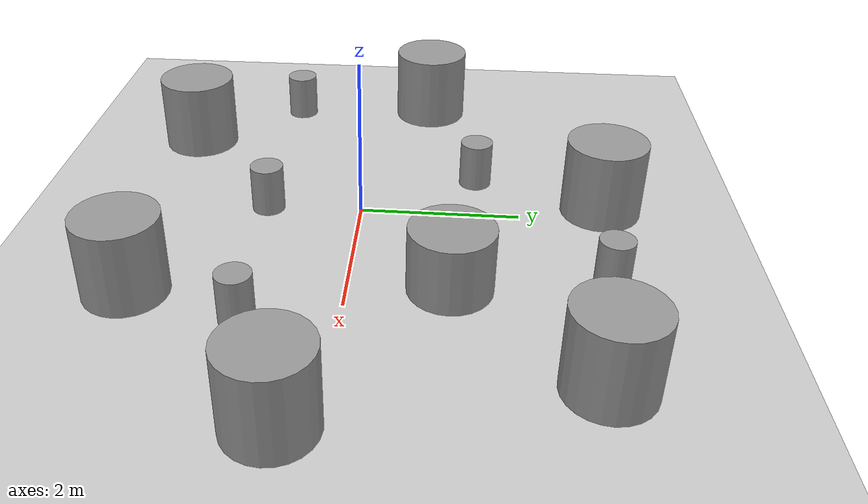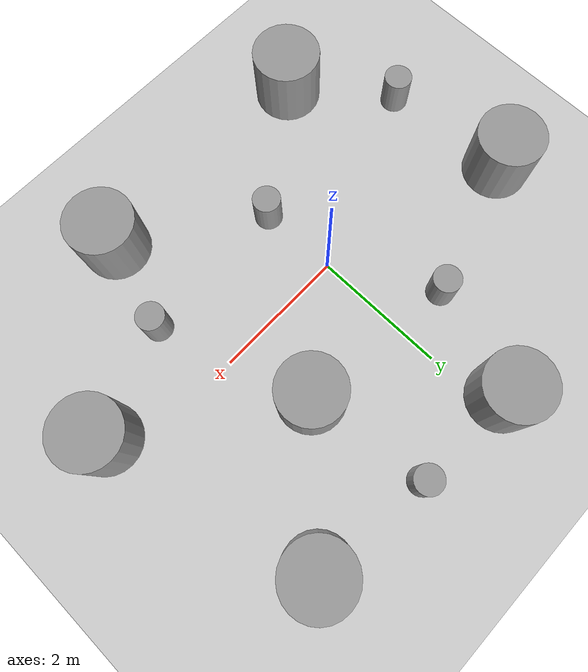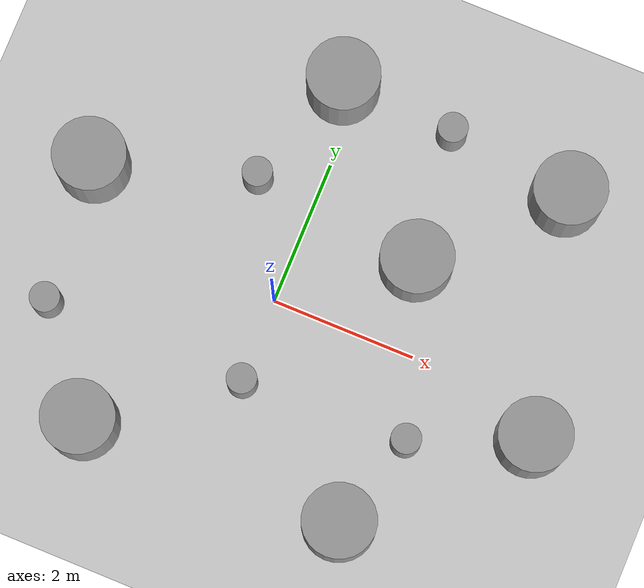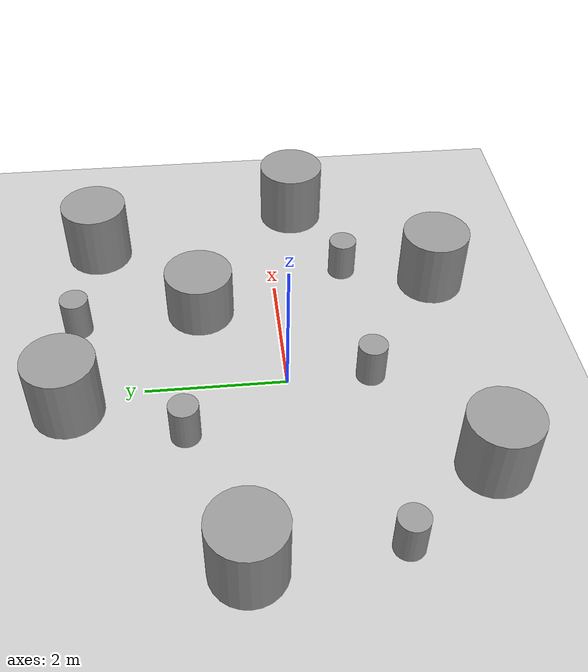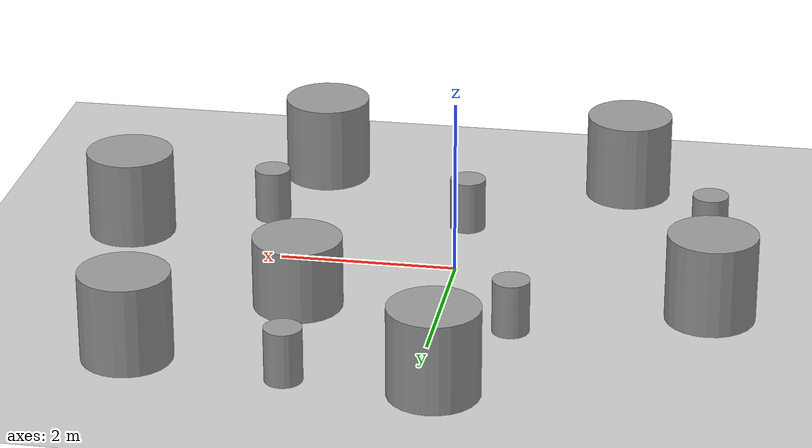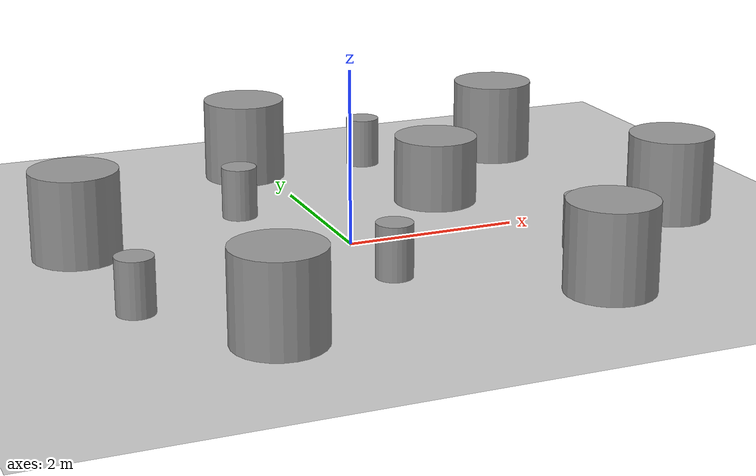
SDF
<sdf version="1.7">
 <world name="default">
  <light name="sun" type="directional">
   <pose>0 0 10 0 -0 0</pose>
   <diffuse>0.8 0.8 0.8 1</diffuse>
   <specular>0.2 0.2 0.2 1</specular>
   <attenuation>
    <range>1000</range>
    <constant>0.9</constant>
    <linear>0.01</linear>
    <quadratic>0.001</quadratic>
   </attenuation>
   <direction>-0.5 0.1 -0.9</direction>
   <spot><inner_angle>0</inner_angle><outer_angle>0</outer_angle><falloff>0</falloff></spot>
  </light>
  <model name="ground_plane">
   <static>1</static>
   <link name="link">
    <collision name="collision">
     <geometry><plane><normal>0 0 1</normal><size>100 100</size></plane></geometry>
     <surface>
      <contact><collide_bitmask>65535</collide_bitmask></contact>
      <friction><ode><mu>100</mu><mu2>50</mu2></ode></friction>
     </surface>
    </collision>
    <visual name="visual">
     <cast_shadows>0</cast_shadows>
     <geometry><plane><normal>0 0 1</normal><size>100 100</size></plane></geometry>
     <material>
      <script><uri>file://media/materials/scripts/gazebo.material</uri><name>Gazebo/Grey</name></script>
     </material>
    </visual>
   </link>
  </model>
  <gravity>0 0 -9.8</gravity>
  <magnetic_field>6e-06 2.3e-05 -4.2e-05</magnetic_field>
  <atmosphere type="adiabatic"/>
  <physics type="ode">
   <max_step_size>0.001</max_step_size>
   <real_time_factor>1</real_time_factor>
   <real_time_update_rate>1000</real_time_update_rate>
  </physics>
  <scene><ambient>0.4 0.4 0.4 1</ambient><background>0.7 0.7 0.7 1</background><shadows>1</shadows></scene>
  <spherical_coordinates>
   <surface_model>EARTH_WGS84</surface_model>
   <latitude_deg>0</latitude_deg>
   <longitude_deg>0</longitude_deg>
   <elevation>0</elevation>
   <heading_deg>0</heading_deg>
  </spherical_coordinates>
  <model name="unit_cylinder">
   <pose>1.93564 -2.44977 0.499994 -3e-06 -2e-06 -0</pose>
   <link name="link">
    <inertial>
     <mass>1</mass>
     <inertia><ixx>0.145833</ixx><ixy>0</ixy><ixz>0</ixz><iyy>0.145833</iyy><iyz>0</iyz><izz>0.125</izz></inertia>
    </inertial>
    <collision name="collision">
     <geometry><cylinder><radius>0.5</radius><length>1</length></cylinder></geometry>
    </collision>
    <visual name="visual">
     <geometry><cylinder><radius>0.5</radius><length>1</length></cylinder></geometry>
     <material>
      <script><name>Gazebo/Grey</name><uri>file://media/materials/scripts/gazebo.material</uri></script>
     </material>
    </visual>
   </link>
  </model>
  <model name="unit_cylinder_0">
   <pose>-1.72302 -2.49029 0.499998 3e-06 4e-06 -0</pose>
   <link name="link">
    <inertial>
     <mass>1</mass>
     <inertia><ixx>0.145833</ixx><ixy>0</ixy><ixz>0</ixz><iyy>0.145833</iyy><iyz>0</iyz><izz>0.125</izz></inertia>
    </inertial>
    <collision name="collision">
     <geometry><cylinder><radius>0.5</radius><length>1</length></cylinder></geometry>
    </collision>
    <visual name="visual">
     <geometry><cylinder><radius>0.5</radius><length>1</length></cylinder></geometry>
     <material>
      <script><name>Gazebo/Grey</name><uri>file://media/materials/scripts/gazebo.material</uri></script>
     </material>
    </visual>
   </link>
  </model>
  <model name="unit_cylinder_1">
   <pose>3.87518 -0.446925 0.499994 -3e-06 -2e-06 -0</pose>
   <link name="link">
    <inertial>
     <mass>1</mass>
     <inertia><ixx>0.145833</ixx><ixy>0</ixy><ixz>0</ixz><iyy>0.145833</iyy><iyz>0</iyz><izz>0.125</izz></inertia>
    </inertial>
    <collision name="collision">
     <geometry><cylinder><radius>0.5</radius><length>1</length></cylinder></geometry>
    </collision>
    <visual name="visual">
     <geometry><cylinder><radius>0.5</radius><length>1</length></cylinder></geometry>
     <material>
      <script><name>Gazebo/Grey</name><uri>file://media/materials/scripts/gazebo.material</uri></script>
     </material>
    </visual>
   </link>
  </model>
  <model name="unit_cylinder_2">
   <pose>-2.94163 0.766962 0.499997 3e-06 2e-06 -0</pose>
   <link name="link">
    <inertial>
     <mass>1</mass>
     <inertia><ixx>0.145833</ixx><ixy>0</ixy><ixz>0</ixz><iyy>0.145833</iyy><iyz>0</iyz><izz>0.125</izz></inertia>
    </inertial>
    <collision name="collision">
     <geometry><cylinder><radius>0.5</radius><length>1</length></cylinder></geometry>
    </collision>
    <visual name="visual">
     <geometry><cylinder><radius>0.5</radius><length>1</length></cylinder></geometry>
     <material>
      <script><name>Gazebo/Grey</name><uri>file://media/materials/scripts/gazebo.material</uri></script>
     </material>
    </visual>
   </link>
  </model>
  <model name="unit_cylinder_3">
   <pose>-0.247943 3.03542 0.499994 -4e-06 -3e-06 -0</pose>
   <link name="link">
    <inertial>
     <mass>1</mass>
     <inertia><ixx>0.145833</ixx><ixy>0</ixy><ixz>0</ixz><iyy>0.145833</iyy><iyz>0</iyz><izz>0.125</izz></inertia>
    </inertial>
    <collision name="collision">
     <geometry><cylinder><radius>0.5</radius><length>1</length></cylinder></geometry>
    </collision>
    <visual name="visual">
     <geometry><cylinder><radius>0.5</radius><length>1</length></cylinder></geometry>
     <material>
      <script><name>Gazebo/Grey</name><uri>file://media/materials/scripts/gazebo.material</uri></script>
     </material>
    </visual>
   </link>
  </model>
  <model name="unit_cylinder_5">
   <pose>3.09996 2.74546 0.499992 -3e-06 2e-06 0</pose>
   <link name="link">
    <inertial>
     <mass>1</mass>
     <inertia><ixx>0.145833</ixx><ixy>0</ixy><ixz>0</ixz><iyy>0.145833</iyy><iyz>0</iyz><izz>0.125</izz></inertia>
    </inertial>
    <collision name="collision">
     <geometry><cylinder><radius>0.5</radius><length>1</length></cylinder></geometry>
    </collision>
    <visual name="visual">
     <geometry><cylinder><radius>0.5</radius><length>1</length></cylinder></geometry>
     <material>
      <script><name>Gazebo/Grey</name><uri>file://media/materials/scripts/gazebo.material</uri></script>
     </material>
    </visual>
   </link>
  </model>
  <model name="unit_cylinder_4">
   <pose>1.56923 1.16762 0.305841 0 -0 2e-06</pose>
   <link name="link">
    <inertial>
     <mass>1</mass>
     <inertia><ixx>0.145833</ixx><ixy>0</ixy><ixz>0</ixz><iyy>0.145833</iyy><iyz>0</iyz><izz>0.125</izz></inertia>
    </inertial>
    <collision name="collision">
     <geometry><cylinder><radius>0.499998</radius><length>0.999997</length></cylinder></geometry>
    </collision>
    <visual name="visual">
     <geometry><cylinder><radius>0.499998</radius><length>0.999997</length></cylinder></geometry>
     <material>
      <script><name>Gazebo/Grey</name><uri>file://media/materials/scripts/gazebo.material</uri></script>
     </material>
    </visual>
   </link>
  </model>
  <model name="unit_cylinder_4_clone">
   <pose>0.031044 -1.1859 0.30585 0 -0 2e-06</pose>
   <link name="link">
    <inertial>
     <mass>1</mass>
     <inertia><ixx>0.145833</ixx><ixy>0</ixy><ixz>0</ixz><iyy>0.145833</iyy><iyz>0</iyz><izz>0.125</izz></inertia>
    </inertial>
    <collision name="collision">
     <geometry><cylinder><radius>0.207133</radius><length>0.611701</length></cylinder></geometry>
    </collision>
    <visual name="visual">
     <geometry><cylinder><radius>0.207133</radius><length>0.611701</length></cylinder></geometry>
     <material>
      <script><name>Gazebo/Grey</name><uri>file://media/materials/scripts/gazebo.material</uri></script>
     </material>
    </visual>
   </link>
  </model>
  <model name="unit_cylinder_4_clone_0">
   <pose>-0.835988 1.44924 0.305841 0 -0 2e-06</pose>
   <link name="link">
    <inertial>
     <mass>1</mass>
     <inertia><ixx>0.145833</ixx><ixy>0</ixy><ixz>0</ixz><iyy>0.145833</iyy><iyz>0</iyz><izz>0.125</izz></inertia>
    </inertial>
    <collision name="collision">
     <geometry><cylinder><radius>0.207133</radius><length>0.611701</length></cylinder></geometry>
    </collision>
    <visual name="visual">
     <geometry><cylinder><radius>0.207133</radius><length>0.611701</length></cylinder></geometry>
     <material>
      <script><name>Gazebo/Grey</name><uri>file://media/materials/scripts/gazebo.material</uri></script>
     </material>
    </visual>
   </link>
  </model>
  <model name="unit_cylinder_4_clone_1">
   <pose>2.33547 -1.10086 0.30585 0 -0 2e-06</pose>
   <link name="link">
    <inertial>
     <mass>1</mass>
     <inertia><ixx>0.145833</ixx><ixy>0</ixy><ixz>0</ixz><iyy>0.145833</iyy><iyz>0</iyz><izz>0.125</izz></inertia>
    </inertial>
    <collision name="collision">
     <geometry><cylinder><radius>0.207133</radius><length>0.611701</length></cylinder></geometry>
    </collision>
    <visual name="visual">
     <geometry><cylinder><radius>0.207133</radius><length>0.611701</length></cylinder></geometry>
     <material>
      <script><name>Gazebo/Grey</name><uri>file://media/materials/scripts/gazebo.material</uri></script>
     </material>
    </visual>
   </link>
  </model>
  <model name="unit_cylinder_4_clone_2">
   <pose>-2.79059 -1.17336 0.305841 0 -0 2e-06</pose>
   <link name="link">
    <inertial>
     <mass>1</mass>
     <inertia><ixx>0.145833</ixx><ixy>0</ixy><ixz>0</ixz><iyy>0.145833</iyy><iyz>0</iyz><izz>0.125</izz></inertia>
    </inertial>
    <collision name="collision">
     <geometry><cylinder><radius>0.207133</radius><length>0.611701</length></cylinder></geometry>
    </collision>
    <visual name="visual">
     <geometry><cylinder><radius>0.207133</radius><length>0.611701</length></cylinder></geometry>
     <material>
      <script><name>Gazebo/Grey</name><uri>file://media/materials/scripts/gazebo.material</uri></script>
     </material>
    </visual>
   </link>
  </model>
  <model name="unit_cylinder_4_clone_3">
   <pose>1.34955 2.98954 0.30585 0 -0 2e-06</pose>
   <link name="link">
    <inertial>
     <mass>1</mass>
     <inertia><ixx>0.145833</ixx><ixy>0</ixy><ixz>0</ixz><iyy>0.145833</iyy><iyz>0</iyz><izz>0.125</izz></inertia>
    </inertial>
    <collision name="collision">
     <geometry><cylinder><radius>0.207133</radius><length>0.611701</length></cylinder></geometry>
    </collision>
    <visual name="visual">
     <geometry><cylinder><radius>0.207133</radius><length>0.611701</length></cylinder></geometry>
     <material>
      <script><name>Gazebo/Grey</name><uri>file://media/materials/scripts/gazebo.material</uri></script>
     </material>
    </visual>
   </link>
  </model>
 </world>
</sdf>
